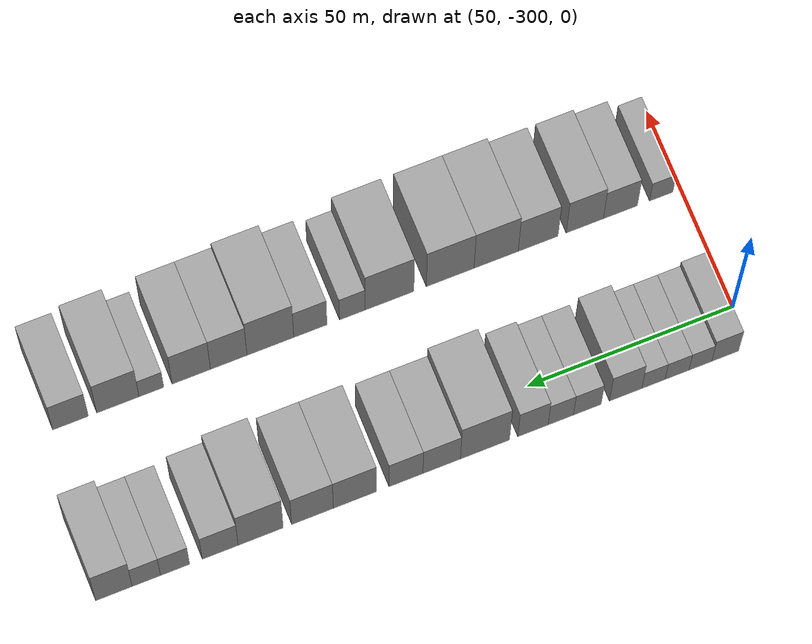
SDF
<sdf version="1.6">
 <world name="default">
  <model name="building_1">
   <static>1</static>
   <pose>50.0000 -293.7207 0 0.000000 0.000000 0.000000</pose>
   <link name="link">
    <pose>0 0 7.50 0 0 0</pose>
    <collision name="collision"><geometry><box><size>20.0000 6.5586 15.0000</size></box></geometry></collision>
    <visual name="visual">
     <cast_shadows>0</cast_shadows>
     <geometry><box><size>20.0000 6.5586 15.0000</size></box></geometry>
     <material>
      <script>
       <uri>model://grey_wall/materials/scripts</uri>
       <uri>model://grey_wall/materials/textures</uri>
       <name>vrc/grey_wall</name>
      </script>
     </material>
    </visual>
   </link>
  </model>
  <model name="building_2">
   <static>1</static>
   <pose>50.0000 -287.6814 0 0.000000 0.000000 0.000000</pose>
   <link name="link">
    <pose>0 0 6.00 0 0 0</pose>
    <collision name="collision"><geometry><box><size>20.0000 5.5199 12.0000</size></box></geometry></collision>
    <visual name="visual">
     <cast_shadows>0</cast_shadows>
     <geometry><box><size>20.0000 5.5199 12.0000</size></box></geometry>
     <material>
      <script>
       <uri>model://grey_wall/materials/scripts</uri>
       <uri>model://grey_wall/materials/textures</uri>
       <name>vrc/grey_wall</name>
      </script>
     </material>
    </visual>
   </link>
  </model>
  <model name="building_3">
   <static>1</static>
   <pose>50.0000 -282.0184 0 0.000000 0.000000 0.000000</pose>
   <link name="link">
    <pose>0 0 6.00 0 0 0</pose>
    <collision name="collision"><geometry><box><size>20.0000 5.8060 12.0000</size></box></geometry></collision>
    <visual name="visual">
     <cast_shadows>0</cast_shadows>
     <geometry><box><size>20.0000 5.8060 12.0000</size></box></geometry>
     <material>
      <script>
       <uri>model://grey_wall/materials/scripts</uri>
       <uri>model://grey_wall/materials/textures</uri>
       <name>vrc/grey_wall</name>
      </script>
     </material>
    </visual>
   </link>
  </model>
  <model name="building_4">
   <static>1</static>
   <pose>50.0000 -276.2854 0 0.000000 0.000000 0.000000</pose>
   <link name="link">
    <pose>0 0 6.00 0 0 0</pose>
    <collision name="collision"><geometry><box><size>20.0000 5.6601 12.0000</size></box></geometry></collision>
    <visual name="visual">
     <cast_shadows>0</cast_shadows>
     <geometry><box><size>20.0000 5.6601 12.0000</size></box></geometry>
     <material>
      <script>
       <uri>model://grey_wall/materials/scripts</uri>
       <uri>model://grey_wall/materials/textures</uri>
       <name>vrc/grey_wall</name>
      </script>
     </material>
    </visual>
   </link>
  </model>
  <model name="building_5">
   <static>1</static>
   <pose>50.0000 -269.5465 0 0.000000 0.000000 0.000000</pose>
   <link name="link">
    <pose>0 0 9.00 0 0 0</pose>
    <collision name="collision"><geometry><box><size>20.0000 7.8177 18.0000</size></box></geometry></collision>
    <visual name="visual">
     <cast_shadows>0</cast_shadows>
     <geometry><box><size>20.0000 7.8177 18.0000</size></box></geometry>
     <material>
      <script>
       <uri>model://grey_wall/materials/scripts</uri>
       <uri>model://grey_wall/materials/textures</uri>
       <name>vrc/grey_wall</name>
      </script>
     </material>
    </visual>
   </link>
  </model>
  <model name="building_6">
   <static>1</static>
   <pose>50.0000 -260.2850 0 0.000000 0.000000 0.000000</pose>
   <link name="link">
    <pose>0 0 7.50 0 0 0</pose>
    <collision name="collision"><geometry><box><size>20.0000 6.7053 15.0000</size></box></geometry></collision>
    <visual name="visual">
     <cast_shadows>0</cast_shadows>
     <geometry><box><size>20.0000 6.7053 15.0000</size></box></geometry>
     <material>
      <script>
       <uri>model://grey_wall/materials/scripts</uri>
       <uri>model://grey_wall/materials/textures</uri>
       <name>vrc/grey_wall</name>
      </script>
     </material>
    </visual>
   </link>
  </model>
  <model name="building_7">
   <static>1</static>
   <pose>50.0000 -253.8806 0 0.000000 0.000000 0.000000</pose>
   <link name="link">
    <pose>0 0 7.50 0 0 0</pose>
    <collision name="collision"><geometry><box><size>20.0000 6.1035 15.0000</size></box></geometry></collision>
    <visual name="visual">
     <cast_shadows>0</cast_shadows>
     <geometry><box><size>20.0000 6.1035 15.0000</size></box></geometry>
     <material>
      <script>
       <uri>model://grey_wall/materials/scripts</uri>
       <uri>model://grey_wall/materials/textures</uri>
       <name>vrc/grey_wall</name>
      </script>
     </material>
    </visual>
   </link>
  </model>
  <model name="building_8">
   <static>1</static>
   <pose>50.0000 -247.1774 0 0.000000 0.000000 0.000000</pose>
   <link name="link">
    <pose>0 0 9.00 0 0 0</pose>
    <collision name="collision"><geometry><box><size>20.0000 7.3030 18.0000</size></box></geometry></collision>
    <visual name="visual">
     <cast_shadows>0</cast_shadows>
     <geometry><box><size>20.0000 7.3030 18.0000</size></box></geometry>
     <material>
      <script>
       <uri>model://grey_wall/materials/scripts</uri>
       <uri>model://grey_wall/materials/textures</uri>
       <name>vrc/grey_wall</name>
      </script>
     </material>
    </visual>
   </link>
  </model>
  <model name="building_9">
   <static>1</static>
   <pose>50.0000 -235.6194 0 0.000000 0.000000 0.000000</pose>
   <link name="link">
    <pose>0 0 12.00 0 0 0</pose>
    <collision name="collision"><geometry><box><size>20.0000 11.8131 24.0000</size></box></geometry></collision>
    <visual name="visual">
     <cast_shadows>0</cast_shadows>
     <geometry><box><size>20.0000 11.8131 24.0000</size></box></geometry>
     <material>
      <script>
       <uri>model://grey_wall/materials/scripts</uri>
       <uri>model://grey_wall/materials/textures</uri>
       <name>vrc/grey_wall</name>
      </script>
     </material>
    </visual>
   </link>
  </model>
  <model name="building_10">
   <static>1</static>
   <pose>50.0000 -225.2220 0 0.000000 0.000000 0.000000</pose>
   <link name="link">
    <pose>0 0 9.00 0 0 0</pose>
    <collision name="collision"><geometry><box><size>20.0000 8.9816 18.0000</size></box></geometry></collision>
    <visual name="visual">
     <cast_shadows>0</cast_shadows>
     <geometry><box><size>20.0000 8.9816 18.0000</size></box></geometry>
     <material>
      <script>
       <uri>model://grey_wall/materials/scripts</uri>
       <uri>model://grey_wall/materials/textures</uri>
       <name>vrc/grey_wall</name>
      </script>
     </material>
    </visual>
   </link>
  </model>
  <model name="building_11">
   <static>1</static>
   <pose>50.0000 -216.6811 0 0.000000 0.000000 0.000000</pose>
   <link name="link">
    <pose>0 0 9.00 0 0 0</pose>
    <collision name="collision"><geometry><box><size>20.0000 8.1002 18.0000</size></box></geometry></collision>
    <visual name="visual">
     <cast_shadows>0</cast_shadows>
     <geometry><box><size>20.0000 8.1002 18.0000</size></box></geometry>
     <material>
      <script>
       <uri>model://grey_wall/materials/scripts</uri>
       <uri>model://grey_wall/materials/textures</uri>
       <name>vrc/grey_wall</name>
      </script>
     </material>
    </visual>
   </link>
  </model>
  <model name="building_12">
   <static>1</static>
   <pose>50.0000 -204.4950 0 0.000000 0.000000 0.000000</pose>
   <link name="link">
    <pose>0 0 10.50 0 0 0</pose>
    <collision name="collision"><geometry><box><size>20.0000 10.2720 21.0000</size></box></geometry></collision>
    <visual name="visual">
     <cast_shadows>0</cast_shadows>
     <geometry><box><size>20.0000 10.2720 21.0000</size></box></geometry>
     <material>
      <script>
       <uri>model://grey_wall/materials/scripts</uri>
       <uri>model://grey_wall/materials/textures</uri>
       <name>vrc/grey_wall</name>
      </script>
     </material>
    </visual>
   </link>
  </model>
  <model name="building_13">
   <static>1</static>
   <pose>50.0000 -194.3998 0 0.000000 0.000000 0.000000</pose>
   <link name="link">
    <pose>0 0 10.50 0 0 0</pose>
    <collision name="collision"><geometry><box><size>20.0000 9.9184 21.0000</size></box></geometry></collision>
    <visual name="visual">
     <cast_shadows>0</cast_shadows>
     <geometry><box><size>20.0000 9.9184 21.0000</size></box></geometry>
     <material>
      <script>
       <uri>model://grey_wall/materials/scripts</uri>
       <uri>model://grey_wall/materials/textures</uri>
       <name>vrc/grey_wall</name>
      </script>
     </material>
    </visual>
   </link>
  </model>
  <model name="building_14">
   <static>1</static>
   <pose>50.0000 -182.0912 0 0.000000 0.000000 0.000000</pose>
   <link name="link">
    <pose>0 0 12.00 0 0 0</pose>
    <collision name="collision"><geometry><box><size>20.0000 10.6989 24.0000</size></box></geometry></collision>
    <visual name="visual">
     <cast_shadows>0</cast_shadows>
     <geometry><box><size>20.0000 10.6989 24.0000</size></box></geometry>
     <material>
      <script>
       <uri>model://grey_wall/materials/scripts</uri>
       <uri>model://grey_wall/materials/textures</uri>
       <name>vrc/grey_wall</name>
      </script>
     </material>
    </visual>
   </link>
  </model>
  <model name="building_15">
   <static>1</static>
   <pose>50.0000 -172.4970 0 0.000000 0.000000 0.000000</pose>
   <link name="link">
    <pose>0 0 9.00 0 0 0</pose>
    <collision name="collision"><geometry><box><size>20.0000 8.4894 18.0000</size></box></geometry></collision>
    <visual name="visual">
     <cast_shadows>0</cast_shadows>
     <geometry><box><size>20.0000 8.4894 18.0000</size></box></geometry>
     <material>
      <script>
       <uri>model://grey_wall/materials/scripts</uri>
       <uri>model://grey_wall/materials/textures</uri>
       <name>vrc/grey_wall</name>
      </script>
     </material>
    </visual>
   </link>
  </model>
  <model name="building_16">
   <static>1</static>
   <pose>50.0000 -161.8119 0 0.000000 0.000000 0.000000</pose>
   <link name="link">
    <pose>0 0 7.50 0 0 0</pose>
    <collision name="collision"><geometry><box><size>20.0000 6.8809 15.0000</size></box></geometry></collision>
    <visual name="visual">
     <cast_shadows>0</cast_shadows>
     <geometry><box><size>20.0000 6.8809 15.0000</size></box></geometry>
     <material>
      <script>
       <uri>model://grey_wall/materials/scripts</uri>
       <uri>model://grey_wall/materials/textures</uri>
       <name>vrc/grey_wall</name>
      </script>
     </material>
    </visual>
   </link>
  </model>
  <model name="building_17">
   <static>1</static>
   <pose>50.0000 -155.0350 0 0.000000 0.000000 0.000000</pose>
   <link name="link">
    <pose>0 0 7.50 0 0 0</pose>
    <collision name="collision"><geometry><box><size>20.0000 6.6728 15.0000</size></box></geometry></collision>
    <visual name="visual">
     <cast_shadows>0</cast_shadows>
     <geometry><box><size>20.0000 6.6728 15.0000</size></box></geometry>
     <material>
      <script>
       <uri>model://grey_wall/materials/scripts</uri>
       <uri>model://grey_wall/materials/textures</uri>
       <name>vrc/grey_wall</name>
      </script>
     </material>
    </visual>
   </link>
  </model>
  <model name="building_18">
   <static>1</static>
   <pose>50.0000 -147.3848 0 0.000000 0.000000 0.000000</pose>
   <link name="link">
    <pose>0 0 10.50 0 0 0</pose>
    <collision name="collision"><geometry><box><size>20.0000 8.6277 21.0000</size></box></geometry></collision>
    <visual name="visual">
     <cast_shadows>0</cast_shadows>
     <geometry><box><size>20.0000 8.6277 21.0000</size></box></geometry>
     <material>
      <script>
       <uri>model://grey_wall/materials/scripts</uri>
       <uri>model://grey_wall/materials/textures</uri>
       <name>vrc/grey_wall</name>
      </script>
     </material>
    </visual>
   </link>
  </model>
  <model name="building_69">
   <static>1</static>
   <pose>90.0000 -295.1282 0 0.000000 0.000000 0.000000</pose>
   <link name="link">
    <pose>0 0 6.00 0 0 0</pose>
    <collision name="collision"><geometry><box><size>20.0000 5.7437 12.0000</size></box></geometry></collision>
    <visual name="visual">
     <cast_shadows>0</cast_shadows>
     <geometry><box><size>20.0000 5.7437 12.0000</size></box></geometry>
     <material>
      <script>
       <uri>model://grey_wall/materials/scripts</uri>
       <uri>model://grey_wall/materials/textures</uri>
       <name>vrc/grey_wall</name>
      </script>
     </material>
    </visual>
   </link>
  </model>
  <model name="building_70">
   <static>1</static>
   <pose>90.0000 -285.0855 0 0.000000 0.000000 0.000000</pose>
   <link name="link">
    <pose>0 0 9.00 0 0 0</pose>
    <collision name="collision"><geometry><box><size>20.0000 8.3417 18.0000</size></box></geometry></collision>
    <visual name="visual">
     <cast_shadows>0</cast_shadows>
     <geometry><box><size>20.0000 8.3417 18.0000</size></box></geometry>
     <material>
      <script>
       <uri>model://grey_wall/materials/scripts</uri>
       <uri>model://grey_wall/materials/textures</uri>
       <name>vrc/grey_wall</name>
      </script>
     </material>
    </visual>
   </link>
  </model>
  <model name="building_71">
   <static>1</static>
   <pose>90.0000 -276.3613 0 0.000000 0.000000 0.000000</pose>
   <link name="link">
    <pose>0 0 10.50 0 0 0</pose>
    <collision name="collision"><geometry><box><size>20.0000 9.1067 21.0000</size></box></geometry></collision>
    <visual name="visual">
     <cast_shadows>0</cast_shadows>
     <geometry><box><size>20.0000 9.1067 21.0000</size></box></geometry>
     <material>
      <script>
       <uri>model://grey_wall/materials/scripts</uri>
       <uri>model://grey_wall/materials/textures</uri>
       <name>vrc/grey_wall</name>
      </script>
     </material>
    </visual>
   </link>
  </model>
  <model name="building_72">
   <static>1</static>
   <pose>90.0000 -264.9593 0 0.000000 0.000000 0.000000</pose>
   <link name="link">
    <pose>0 0 10.50 0 0 0</pose>
    <collision name="collision"><geometry><box><size>20.0000 9.6972 21.0000</size></box></geometry></collision>
    <visual name="visual">
     <cast_shadows>0</cast_shadows>
     <geometry><box><size>20.0000 9.6972 21.0000</size></box></geometry>
     <material>
      <script>
       <uri>model://grey_wall/materials/scripts</uri>
       <uri>model://grey_wall/materials/textures</uri>
       <name>vrc/grey_wall</name>
      </script>
     </material>
    </visual>
   </link>
  </model>
  <model name="building_73">
   <static>1</static>
   <pose>90.0000 -254.7268 0 0.000000 0.000000 0.000000</pose>
   <link name="link">
    <pose>0 0 12.00 0 0 0</pose>
    <collision name="collision"><geometry><box><size>20.0000 10.7678 24.0000</size></box></geometry></collision>
    <visual name="visual">
     <cast_shadows>0</cast_shadows>
     <geometry><box><size>20.0000 10.7678 24.0000</size></box></geometry>
     <material>
      <script>
       <uri>model://grey_wall/materials/scripts</uri>
       <uri>model://grey_wall/materials/textures</uri>
       <name>vrc/grey_wall</name>
      </script>
     </material>
    </visual>
   </link>
  </model>
  <model name="building_74">
   <static>1</static>
   <pose>90.0000 -243.5399 0 0.000000 0.000000 0.000000</pose>
   <link name="link">
    <pose>0 0 12.00 0 0 0</pose>
    <collision name="collision"><geometry><box><size>20.0000 11.6060 24.0000</size></box></geometry></collision>
    <visual name="visual">
     <cast_shadows>0</cast_shadows>
     <geometry><box><size>20.0000 11.6060 24.0000</size></box></geometry>
     <material>
      <script>
       <uri>model://grey_wall/materials/scripts</uri>
       <uri>model://grey_wall/materials/textures</uri>
       <name>vrc/grey_wall</name>
      </script>
     </material>
    </visual>
   </link>
  </model>
  <model name="building_75">
   <static>1</static>
   <pose>90.0000 -228.8288 0 0.000000 0.000000 0.000000</pose>
   <link name="link">
    <pose>0 0 12.00 0 0 0</pose>
    <collision name="collision"><geometry><box><size>20.0000 11.8162 24.0000</size></box></geometry></collision>
    <visual name="visual">
     <cast_shadows>0</cast_shadows>
     <geometry><box><size>20.0000 11.8162 24.0000</size></box></geometry>
     <material>
      <script>
       <uri>model://grey_wall/materials/scripts</uri>
       <uri>model://grey_wall/materials/textures</uri>
       <name>vrc/grey_wall</name>
      </script>
     </material>
    </visual>
   </link>
  </model>
  <model name="building_76">
   <static>1</static>
   <pose>90.0000 -219.8242 0 0.000000 0.000000 0.000000</pose>
   <link name="link">
    <pose>0 0 7.50 0 0 0</pose>
    <collision name="collision"><geometry><box><size>20.0000 6.1930 15.0000</size></box></geometry></collision>
    <visual name="visual">
     <cast_shadows>0</cast_shadows>
     <geometry><box><size>20.0000 6.1930 15.0000</size></box></geometry>
     <material>
      <script>
       <uri>model://grey_wall/materials/scripts</uri>
       <uri>model://grey_wall/materials/textures</uri>
       <name>vrc/grey_wall</name>
      </script>
     </material>
    </visual>
   </link>
  </model>
  <model name="building_77">
   <static>1</static>
   <pose>90.0000 -209.7221 0 0.000000 0.000000 0.000000</pose>
   <link name="link">
    <pose>0 0 9.00 0 0 0</pose>
    <collision name="collision"><geometry><box><size>20.0000 8.0110 18.0000</size></box></geometry></collision>
    <visual name="visual">
     <cast_shadows>0</cast_shadows>
     <geometry><box><size>20.0000 8.0110 18.0000</size></box></geometry>
     <material>
      <script>
       <uri>model://grey_wall/materials/scripts</uri>
       <uri>model://grey_wall/materials/textures</uri>
       <name>vrc/grey_wall</name>
      </script>
     </material>
    </visual>
   </link>
  </model>
  <model name="building_78">
   <static>1</static>
   <pose>90.0000 -200.0910 0 0.000000 0.000000 0.000000</pose>
   <link name="link">
    <pose>0 0 12.00 0 0 0</pose>
    <collision name="collision"><geometry><box><size>20.0000 11.2513 24.0000</size></box></geometry></collision>
    <visual name="visual">
     <cast_shadows>0</cast_shadows>
     <geometry><box><size>20.0000 11.2513 24.0000</size></box></geometry>
     <material>
      <script>
       <uri>model://grey_wall/materials/scripts</uri>
       <uri>model://grey_wall/materials/textures</uri>
       <name>vrc/grey_wall</name>
      </script>
     </material>
    </visual>
   </link>
  </model>
  <model name="building_79">
   <static>1</static>
   <pose>90.0000 -190.0800 0 0.000000 0.000000 0.000000</pose>
   <link name="link">
    <pose>0 0 10.50 0 0 0</pose>
    <collision name="collision"><geometry><box><size>20.0000 8.7706 21.0000</size></box></geometry></collision>
    <visual name="visual">
     <cast_shadows>0</cast_shadows>
     <geometry><box><size>20.0000 8.7706 21.0000</size></box></geometry>
     <material>
      <script>
       <uri>model://grey_wall/materials/scripts</uri>
       <uri>model://grey_wall/materials/textures</uri>
       <name>vrc/grey_wall</name>
      </script>
     </material>
    </visual>
   </link>
  </model>
  <model name="building_80">
   <static>1</static>
   <pose>90.0000 -181.0978 0 0.000000 0.000000 0.000000</pose>
   <link name="link">
    <pose>0 0 10.50 0 0 0</pose>
    <collision name="collision"><geometry><box><size>20.0000 9.1938 21.0000</size></box></geometry></collision>
    <visual name="visual">
     <cast_shadows>0</cast_shadows>
     <geometry><box><size>20.0000 9.1938 21.0000</size></box></geometry>
     <material>
      <script>
       <uri>model://grey_wall/materials/scripts</uri>
       <uri>model://grey_wall/materials/textures</uri>
       <name>vrc/grey_wall</name>
      </script>
     </material>
    </visual>
   </link>
  </model>
  <model name="building_81">
   <static>1</static>
   <pose>90.0000 -171.5337 0 0.000000 0.000000 0.000000</pose>
   <link name="link">
    <pose>0 0 6.00 0 0 0</pose>
    <collision name="collision"><geometry><box><size>20.0000 5.9344 12.0000</size></box></geometry></collision>
    <visual name="visual">
     <cast_shadows>0</cast_shadows>
     <geometry><box><size>20.0000 5.9344 12.0000</size></box></geometry>
     <material>
      <script>
       <uri>model://grey_wall/materials/scripts</uri>
       <uri>model://grey_wall/materials/textures</uri>
       <name>vrc/grey_wall</name>
      </script>
     </material>
    </visual>
   </link>
  </model>
  <model name="building_82">
   <static>1</static>
   <pose>90.0000 -163.5370 0 0.000000 0.000000 0.000000</pose>
   <link name="link">
    <pose>0 0 10.50 0 0 0</pose>
    <collision name="collision"><geometry><box><size>20.0000 10.0590 21.0000</size></box></geometry></collision>
    <visual name="visual">
     <cast_shadows>0</cast_shadows>
     <geometry><box><size>20.0000 10.0590 21.0000</size></box></geometry>
     <material>
      <script>
       <uri>model://grey_wall/materials/scripts</uri>
       <uri>model://grey_wall/materials/textures</uri>
       <name>vrc/grey_wall</name>
      </script>
     </material>
    </visual>
   </link>
  </model>
  <model name="building_83">
   <static>1</static>
   <pose>90.0000 -152.2550 0 0.000000 0.000000 0.000000</pose>
   <link name="link">
    <pose>0 0 9.00 0 0 0</pose>
    <collision name="collision"><geometry><box><size>20.0000 8.5050 18.0000</size></box></geometry></collision>
    <visual name="visual">
     <cast_shadows>0</cast_shadows>
     <geometry><box><size>20.0000 8.5050 18.0000</size></box></geometry>
     <material>
      <script>
       <uri>model://grey_wall/materials/scripts</uri>
       <uri>model://grey_wall/materials/textures</uri>
       <name>vrc/grey_wall</name>
      </script>
     </material>
    </visual>
   </link>
  </model>
 </world>
</sdf>
